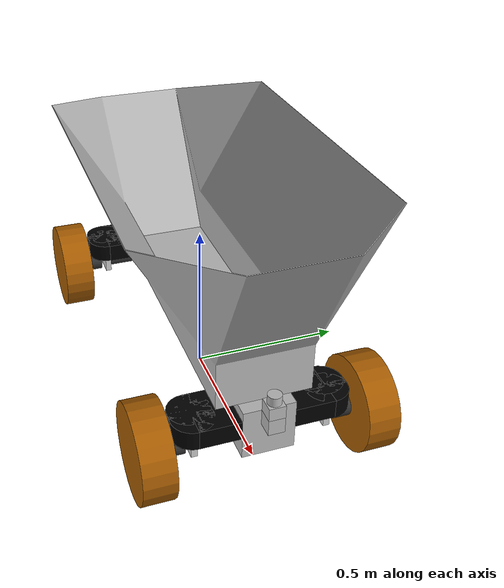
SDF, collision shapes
<?xml version="1.0" ?>
<sdf version="1.4">
    <model name="elias">
        <pose>0 0 0.1961 0 0 0</pose>
        <static>false</static>
        <link name="chassis">
            <inertial>
                <mass>20.0</mass>
                <inertia>
                    <ixx>0.0853</ixx>
                    <ixy>0.0</ixy>
                    <ixz>0.0</ixz>
                    <iyy>1.9153</iyy>
                    <iyz>0.0</iyz>
                    <izz>1.9153</izz>
                </inertia>
            </inertial>
            <velocity_decay>
				<linear>0.0</linear>
				<angular>0.01</angular>
            </velocity_decay>
            <collision name="main_frame">
                <pose>0.0825 0 0 0 0 0</pose>
                <geometry>
                    <box>
                        <size>1.06 0.16 0.16</size>
                    </box>
                </geometry>
            </collision>
            <collision name="bucket">
				<pose>0.57 0 0.18 1.57 0 3.14</pose>
                <geometry>
                    <mesh>
                        <uri>model://elias/meshes/bucket.dae</uri>
                    </mesh>
                </geometry>
            </collision>
            <collision name="lidar_platform">
                <pose>0.6375 0 0.055 0 0 0</pose>
                <geometry>
                    <box>
                        <size>0.05 0.05 0.05</size>
                    </box>
                </geometry>
            </collision>
            <visual name="main_frame">
                <pose>0.0825 0 0 0 0 0</pose>
                <geometry>
                    <box>
                        <size>1.06 0.16 0.16</size>
                    </box>
                </geometry>
                <material>
                    <script>
                        <uri>model://elias/materials/scripts/elias.material</uri>
                        <uri>model://elias/materials/textures/steel.jpg</uri>
                        <name>Lunabotics/Steel</name>
                    </script>
                </material>
            </visual>
            <visual name="lidar_platform">
                <pose>0.6375 0 0.055 0 0 0</pose>
                <geometry>
                    <box>
                        <size>0.05 0.05 0.05</size>
                    </box>
                </geometry>
                <material>
					<diffuse>0.5 0.5 0.5 1.0</diffuse>
                </material>
            </visual>
            <velocity_decay>
                <linear>0</linear>
                <angular>0</angular>
            </velocity_decay>
        </link>
        <link name="rear_axle">
			<pose>-0.53 0 0 0 0 0</pose>
            <velocity_decay>
				<linear>0.0</linear>
				<angular>0.01</angular>
            </velocity_decay>
            <collision name="collision">
                <geometry>
                    <box>
                        <size>0.165 0.16 0.16</size>
                    </box>
                </geometry>
            </collision>
            <visual name="visual">
                <geometry>
                    <box>
                        <size>0.165 0.16 0.16</size>
                    </box>
                </geometry>
                <material>
                    <script>
                        <uri>model://elias/materials/scripts/elias.material</uri>
                        <uri>model://elias/materials/textures/steel.jpg</uri>
                        <name>Lunabotics/Steel</name>
                    </script>
                </material>
            </visual>
        </link>

        <include>
            <uri>model://sandwich</uri>
			<name>left_front_sandwich</name>
            <pose>0.53 0.1425 0.02 0 0 0</pose>
        </include>

        <include>
            <uri>model://sandwich</uri>
			<name>right_front_sandwich</name>
            <pose>0.53 -0.1425 0.02 0 0 3.14</pose>
        </include>

        <include>
            <uri>model://sandwich</uri>
			<name>left_rear_sandwich</name>
            <pose>-0.53 0.1425 0.02 0 0 0</pose>
        </include>
        <include>
            <uri>model://sandwich</uri>
			<name>right_rear_sandwich</name>
            <pose>-0.53 -0.1425 0.02 0 0 3.14</pose>
        </include>

        <include>
            <uri>model://wheel</uri>
			<name>left_front_wheel</name>
            <pose>0.53 0.335 -0.0466 0 1.57 1.57</pose>
        </include>

        <include>
            <uri>model://wheel</uri>
			<name>right_front_wheel</name>
            <pose>0.53 -0.335 -0.0466 0 1.57 1.57</pose>
        </include>

        <include>
            <uri>model://wheel</uri>
			<name>left_rear_wheel</name>
            <pose>-0.53 0.335 -0.0466 0 1.57 1.57</pose>
        </include>

        <include>
            <uri>model://wheel</uri>
			<name>right_rear_wheel</name>
            <pose>-0.53 -0.335 -0.0466 0 1.57 1.57</pose>
        </include>

        <include>
            <uri>model://connector</uri>
			<name>left_front_connector</name>
            <pose>0.53 0.205 -0.0466 0 0 0</pose>
        </include>

        <include>
            <uri>model://connector</uri>
			<name>right_front_connector</name>
            <pose>0.53 -0.205 -0.0466 0 0 3.14</pose>
        </include>

        <include>
            <uri>model://connector</uri>
			<name>left_rear_connector</name>
            <pose>-0.53 0.205 -0.0466 0 0 0</pose>
        </include>

        <include>
            <uri>model://connector</uri>
			<name>right_rear_connector</name>
            <pose>-0.53 -0.205 -0.0466 0 0 3.14</pose>
        </include>

        <include>
            <uri>model://hokuyo</uri>
            <pose>0.6375 0 0.115 0 0 0</pose>
        </include>

        <joint type="revolute" name="left_front_driving_hinge">
            <pose>0 0 0 0 0 0</pose>
            <axis>
                <xyz>0 1 0</xyz>
            </axis>
            <physics>
				<ode>
					<max_force>22</max_force>
					<velocity>60</velocity>
				</ode>
            </physics>
            <parent>left_front_connector::holder</parent>
            <child>left_front_wheel::link</child>
        </joint>
        <joint type="revolute" name="right_front_driving_hinge">
            <pose>0 0 0 0 0 0</pose>
            <axis>
                <xyz>0 1 0</xyz>
            </axis>
            <physics>
				<ode>
					<max_force>22</max_force>
					<velocity>60</velocity>
				</ode>
            </physics>
            <parent>right_front_connector::holder</parent>
            <child>right_front_wheel::link</child>
        </joint>
        <joint type="revolute" name="left_rear_driving_hinge">
            <pose>0 0 0 0 0 0</pose>
            <axis>
                <xyz>0 1 0</xyz>
            </axis>
            <physics>
				<ode>
					<max_force>22</max_force>
					<velocity>60</velocity>
				</ode>
            </physics>
            <parent>left_rear_connector::holder</parent>
            <child>left_rear_wheel::link</child>
        </joint>
        <joint type="revolute" name="right_rear_driving_hinge">
            <pose>0 0 0 0 0 0</pose>
            <axis>
                <xyz>0 1 0</xyz>
            </axis>
            <physics>
				<ode>
					<max_force>22</max_force>
					<velocity>60</velocity>
				</ode>
            </physics>
            <parent>right_rear_connector::holder</parent>
            <child>right_rear_wheel::link</child>
        </joint>

        <joint type="revolute" name="left_front_steering_hinge">
            <pose>0 0 0.008 0 0 0</pose>
            <axis>
                <xyz>0 0 1</xyz>
                <dynamics>
					<damping>0.0</damping>
					<friction>1000</friction>
                </dynamics>
                <limit>
                    <lower>-1.57</lower>
                    <upper>1.134</upper>
                </limit>
            </axis>
            <physics>
				<ode>
					<cfm>0.0</cfm>
					<bounce>0.01</bounce>
					<max_force>16.5</max_force>
					<velocity>40</velocity>
					<limit>
						<cfm>0.0</cfm>
						<erp>0.0</erp>
					</limit>
				</ode>
            </physics>
            <parent>left_front_sandwich::link</parent>
            <child>left_front_connector::holder</child>
        </joint>
        <joint type="revolute" name="right_front_steering_hinge">
            <pose>0 0 0.008 0 0 0</pose>
            <axis>
                <xyz>0 0 1</xyz>
                <dynamics>
					<damping>0.0</damping>
					<friction>1000</friction>
                </dynamics>
                <limit>
                    <lower>-1.134</lower>
                    <upper>1.57</upper>
                </limit>
            </axis>
            <physics>
				<ode>
					<cfm>0.0</cfm>
					<bounce>0.01</bounce>
					<max_force>16.5</max_force>
					<velocity>40</velocity>
				</ode>
            </physics>
            <parent>right_front_sandwich::link</parent>
            <child>right_front_connector::holder</child>
        </joint>
        <joint type="revolute" name="left_rear_steering_hinge">
            <pose>0 0 0.008 0 0 0</pose>
            <axis>
                <xyz>0 0 1</xyz>
                <dynamics>
					<damping>0.0</damping>
					<friction>1000</friction>
                </dynamics>
                <limit>
                    <lower>-1.134</lower>
                    <upper>1.57</upper>
                </limit>
            </axis>
            <physics>
				<ode>
					<cfm>0.0</cfm>
					<bounce>0.01</bounce>
					<max_force>16.5</max_force>
					<velocity>40</velocity>
				</ode>
            </physics>
            <parent>left_rear_sandwich::link</parent>
            <child>left_rear_connector::holder</child>
        </joint>
        <joint type="revolute" name="right_rear_steering_hinge">
            <pose>0 0 0.008 0 0 0</pose>
            <axis>
                <xyz>0 0 1</xyz>
                <dynamics>
					<damping>0.0</damping>
					<friction>1000</friction>
                </dynamics>
                <limit>
                    <lower>-1.57</lower>
                    <upper>1.134</upper>
                </limit>
            </axis>
            <physics>
				<ode>
					<cfm>0.0</cfm>
					<bounce>0.01</bounce>
					<max_force>16.5</max_force>
					<velocity>40</velocity>
				</ode>
            </physics>
            <parent>right_rear_sandwich::link</parent>
            <child>right_rear_connector::holder</child>
        </joint>
        <joint type="revolute" name="rear_axle_pivot">
            <pose>0.0825 0 0 0 0 0</pose>
            <axis>
                <xyz>1 0 0</xyz>
                <limit>
                    <lower>-0.52</lower>
                    <upper>0.52</upper>
                </limit>
            </axis>
            <parent>chassis</parent>
            <child>rear_axle</child>
        </joint>
        <joint name="hokuyo_joint" type="revolute">
            <child>hokuyo::link</child>
            <parent>chassis</parent>
            <axis>
                <xyz>0 0 1</xyz>
                <limit>
                    <upper>0</upper>
                    <lower>0</lower>
                </limit>
            </axis>
        </joint>
        <joint name="left_front_sandwich" type="revolute">
            <pose>0 -0.0625 0 0 0 0</pose>
            <child>left_front_sandwich::link</child>
            <parent>chassis</parent>
            <axis>
                <xyz>0 1 0</xyz>
                <limit>
                    <upper>0</upper>
                    <lower>0</lower>
                </limit>
            </axis>
        </joint>
        <joint name="right_front_sandwich" type="revolute">
            <pose>0 -0.0625 0 0 0 0</pose>
            <child>right_front_sandwich::link</child>
            <parent>chassis</parent>
            <axis>
                <xyz>0 1 0</xyz>
                <limit>
                    <upper>0</upper>
                    <lower>0</lower>
                </limit>
            </axis>
        </joint>
        <joint name="left_rear_sandwich" type="revolute">
            <pose>0 -0.0625 0 0 0 0</pose>
            <child>left_rear_sandwich::link</child>
            <parent>rear_axle</parent>
            <axis>
                <xyz>0 1 0</xyz>
                <limit>
                    <upper>0</upper>
                    <lower>0</lower>
                </limit>
            </axis>
        </joint>
        <joint name="right_rear_sandwich" type="revolute">
            <pose>0 -0.0625 0 0 0 0</pose>
            <child>right_rear_sandwich::link</child>
            <parent>rear_axle</parent>
            <axis>
                <xyz>0 1 0</xyz>
                <limit>
                    <upper>0</upper>
                    <lower>0</lower>
                </limit>
            </axis>
        </joint>
        <plugin name="all_wheel_steering_plugin" filename="libAllWheelSteeringPlugin.so" />
        <plugin name="odometry_plugin" filename="libLunaboticsOdometryPlugin.so" />
        <plugin name="transform_plugin" filename="libTransformServerPlugin.so" />
    </model>
</sdf>

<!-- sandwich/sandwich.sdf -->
<sdf version="1.4">
    <model name="sandwich">
		<link name="link">
            <inertial>
                <mass>4</mass>
                <inertia>
                    <ixx>0.0103</ixx>
                    <ixy>0.0</ixy>
                    <ixz>0.0</ixz>
                    <iyy>0.0156</iyy>
                    <iyz>0.0</iyz>
                    <izz>0.0077</izz>
                </inertia>
            </inertial>
			<visual name="cylinder1">
				<pose>0.0175 0.0625 0 0 0 0</pose>
				<geometry>
					<cylinder>
						<radius>0.065</radius>
						<length>0.06</length>
					</cylinder>
				</geometry>
				<material>
					<diffuse>0.0 0.0 0.0 1.0</diffuse>
				</material>
			</visual>
			<visual name="cylinder2">
				<pose>-0.0175 0.0625 0 0 0 0</pose>
				<geometry>
					<cylinder>
						<radius>0.065</radius>
						<length>0.06</length>
					</cylinder>
				</geometry>
				<material>
					<diffuse>0.0 0.0 0.0 1.0</diffuse>
				</material>
			</visual>
			<visual name="box_center">
				<pose>0 0.095 0 0 0 0</pose>
				<geometry>
                    <box>
                        <size>0.035 0.065 0.06</size>
                    </box>
				</geometry>
				<material>
					<diffuse>0.0 0.0 0.0 1.0</diffuse>
				</material>
			</visual>
			<visual name="box_big">
				<pose>0 0 0 0 0 0</pose>
				<geometry>
                    <box>
                        <size>0.165 0.125 0.06</size>
                    </box>
				</geometry>
				<material>
					<diffuse>0.0 0.0 0.0 1.0</diffuse>
				</material>
			</visual>

			<collision name="cylinder1">
				<pose>0.0175 0.0625 0 0 0 0</pose>
				<geometry>
					<cylinder>
						<radius>0.065</radius>
						<length>0.06</length>
					</cylinder>
				</geometry>
			</collision>
			<collision name="cylinder2">
				<pose>-0.0175 0.0625 0 0 0 0</pose>
				<geometry>
					<cylinder>
						<radius>0.065</radius>
						<length>0.06</length>
					</cylinder>
				</geometry>
			</collision>
			<collision name="box_center">
				<pose>0 0.095 0 0 0 0</pose>
				<geometry>
                    <box>
                        <size>0.035 0.065 0.06</size>
                    </box>
				</geometry>
			</collision>
			<collision name="box_big">
				<pose>0 0 0 0 0 0</pose>
				<geometry>
                    <box>
                        <size>0.165 0.125 0.06</size>
                    </box>
				</geometry>
			</collision>
		</link>
	</model>
</sdf>

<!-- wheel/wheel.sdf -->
<sdf version="1.4">
    <model name="wheel">
		<link name="link">
            <inertial>
                <mass>6.64</mass>
                <inertia>
                    <ixx>0.0599</ixx>
                    <ixy>0.0</ixy>
                    <ixz>0.0</ixz>
                    <iyy>0.0599</iyy>
                    <iyz>0.0</iyz>
                    <izz>0.1197</izz>
                </inertia>
            </inertial>
            <velocity_decay>
				<linear>0.0</linear>
				<angular>0.01</angular>
            </velocity_decay>
            <self_collide>true</self_collide>
            <collision name="collision">
                <geometry>
                    <cylinder>
                        <radius>0.1495</radius>
                        <length>0.1</length>
                    </cylinder>
                </geometry>
                <surface>
                    <friction>
                        <ode>
                            <mu>0.5</mu>
                            <mu2>0.5</mu2>
                            <slip1>0.2</slip1>
                            <slip2>0.2</slip2>
                        </ode>
                    </friction>
	                <contact>
						<ode>
							<soft_cfm>0.005</soft_cfm>
						</ode>
	                </contact>
                </surface>
            </collision>
            <visual name="visual">
                <geometry>
                    <mesh>
                        <uri>model://wheel/meshes/wheel.dae</uri>
                    </mesh>
                </geometry>
                <material>
                    <diffuse>0.655 0.361 0.004 1.0</diffuse>
                </material>
            </visual>
            <velocity_decay>
                <linear>0</linear>
                <angular>0</angular>
            </velocity_decay>
        </link>
	</model>
</sdf>

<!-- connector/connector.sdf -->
<sdf version="1.4">
    <model name="connector">
        <link name="motor">
			<pose>0 -0.06375 0 1.57 0 0</pose>
            <inertial>
                <mass>1.3</mass>
                <inertia>
                    <ixx>0.00149</ixx>
                    <ixy>0.0</ixy>
                    <ixz>0.0</ixz>
                    <iyy>0.00149</iyy>
                    <iyz>0.0</iyz>
                    <izz>0.00008</izz>
                </inertia>
            </inertial>
			<visual name="visual">
				<geometry>
					<cylinder>
						<radius>0.0275</radius>
						<length>0.1075</length>
					</cylinder>
				</geometry>
				<material>
					<diffuse>0.2 0.2 0.2 1.0</diffuse>
				</material>
			</visual>
			<collision name="collision">
				<geometry>
					<cylinder>
						<radius>0.0275</radius>
						<length>0.1075</length>
					</cylinder>
				</geometry>
			</collision>
            <velocity_decay>
                <linear>0</linear>
                <angular>0.01</angular>
            </velocity_decay>
        </link>

        <link name="gearbox">
            <inertial>
                <mass>2.14</mass>
                <inertia>
                    <ixx>0.00181</ixx>
                    <ixy>0.0</ixy>
                    <ixz>0.0</ixz>
                    <iyy>0.00181</iyy>
                    <iyz>0.0</iyz>
                    <izz>0.00131</izz>
                </inertia>
            </inertial>
			<pose>0 0.06525 0 1.57 0 0</pose>
			<visual name="visual">
				<geometry>
					<cylinder>
						<radius>0.035</radius>
						<length>0.115</length>
					</cylinder>
				</geometry>
				<material>
					<diffuse>0.2 0.2 0.2 1.0</diffuse>
				</material>
			</visual>
			<collision name="collision">
				<geometry>
					<cylinder>
						<radius>0.035</radius>
						<length>0.0805</length>
					</cylinder>
				</geometry>
			</collision>
            <velocity_decay>
                <linear>0</linear>
                <angular>0.01</angular>
            </velocity_decay>
        </link>

        <link name="holder">
			<pose>0 0 0.0008 0 0 0</pose>
            <inertial>
                <mass>0.03</mass>
                <inertia>
                    <ixx>1</ixx>
                    <ixy>0.0</ixy>
                    <ixz>0.0</ixz>
                    <iyy>1</iyy>
                    <iyz>0.0</iyz>
                    <izz>1</izz>
                </inertia>
            </inertial>
			<visual name="visual">
				<geometry>
					<box>
						<size>0.07 0.02 0.0716</size>
					</box>
				</geometry>
				<material>
					<diffuse>0.8 0.8 0.8 1.0</diffuse>
				</material>
			</visual>
			<collision name="collision">
				<geometry>
					<box>
						<size>0.07 0.02 0.0716</size>
					</box>
				</geometry>
			</collision>
        </link>

        <joint name="motor_joint" type="prismatic">
            <child>motor</child>
            <parent>holder</parent>
            <axis>
                <xyz>0 1 0</xyz>
                <limit>
                    <upper>0</upper>
                    <lower>0</lower>
                </limit>
            </axis>
        </joint>

        <joint name="gearbox_joint" type="prismatic">
            <child>gearbox</child>
            <parent>holder</parent>
            <axis>
                <xyz>0 1 0</xyz>
                <limit>
                    <upper>0</upper>
                    <lower>0</lower>
                </limit>
            </axis>
        </joint>
	</model>
</sdf>

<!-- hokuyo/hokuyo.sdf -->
<sdf version="1.4">
    <model name="hokuyo">
        <pose>0 0 0.035 0 0 0</pose>
        <link name="link">
            <inertial>
                <mass>2</mass>
                <inertia>
                    <ixx>1.0</ixx>
                    <ixy>0.0</ixy>
                    <ixz>0.0</ixz>
                    <iyy>1.0</iyy>
                    <iyz>0.0</iyz>
                    <izz>1.0</izz>
                </inertia>
            </inertial>
            <visual name="visual">
                <geometry>
                    <mesh>
                        <uri>model://hokuyo/meshes/hokuyo.dae</uri>
                    </mesh>
                </geometry>
            </visual>
            <collision name="collision-base">
                <pose>0 0 -0.0145 0 0 0</pose>
                <geometry>
                    <box>
                        <size>0.05 0.05 0.041</size>
                    </box>
                </geometry>
            </collision>
            <collision name="collision-top">
                <pose>0 0 0.0205 0 0 0</pose>
                <geometry>
                    <cylinder>
                        <radius>0.021</radius>
                        <length>0.029</length>
                    </cylinder>
                </geometry>
            </collision>
            <sensor name="laser" type="ray">
                <pose>0.01 0 0.0175 0 -0 0</pose>
                <plugin name="laser" filename="libLunaboticsLidarPlugin.so" />
                <always_on>1</always_on>
                <update_rate>30</update_rate>
                <visualize>true</visualize>
            </sensor>
        </link>
    </model>
</sdf>
